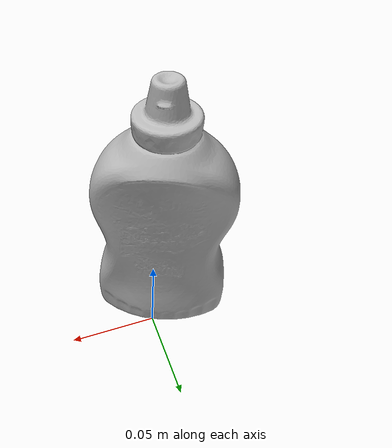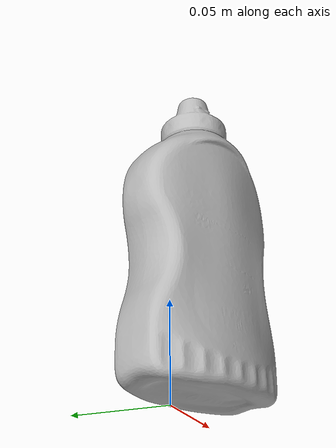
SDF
<?xml version="1.0"?>
<sdf version="1.7">
  <!--
This SDF file was automatically generated using a template modified
and authored by Adwait Naik. The moment of interia is not supposed to be changed.
-->
  <model name="mustard_bottle">
    <pose>0.0 0.0 0.0 0.0 0 0</pose>
    <link name="link">
      <inertial>
        <inertia>
          <ixx>1.6697164243557222e-04</ixx>
          <ixy>-7.608043365683558e-23</ixy>
          <ixz>-8.85497422500391e-24</ixz>
          <iyy>1.454996005383364e-04</iyy>
          <iyz>5.1836699346339805e-24</iyz>
          <izz>4.2928863786736384e-05</izz>
        </inertia>
        <pose>-0.014 -0.021 0.06 0 0.0 1.1</pose>
        <mass>0.1</mass>
      </inertial>
      <collision name="collision">
        <geometry>
          <mesh>
            <uri>model://mustard_bottle/meshes/textured.stl</uri>
            <scale>0.8 0.8 0.8</scale>
          </mesh>
        </geometry>
        <surface>
          <friction>
            <ode>
              <max_vel>0.01</max_vel>
              <min_depth>0.01</min_depth>
              <mu>100</mu>
              <mu2>100</mu2>
            </ode>
          </friction>
        </surface>
      </collision>

      <visual name="visual">
        <geometry>
          <mesh>
            <uri>model://mustard_bottle/meshes/textured.dae</uri>
            <scale>0.8 0.8 0.8</scale>
          </mesh>
        </geometry>
      </visual>

    </link>
  </model>
</sdf>
